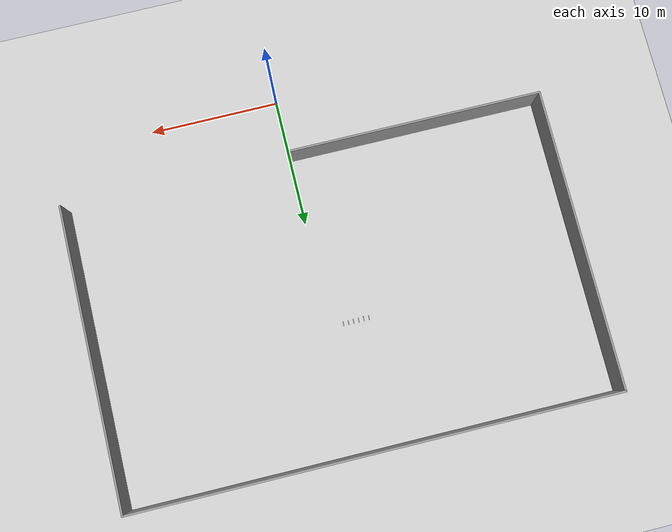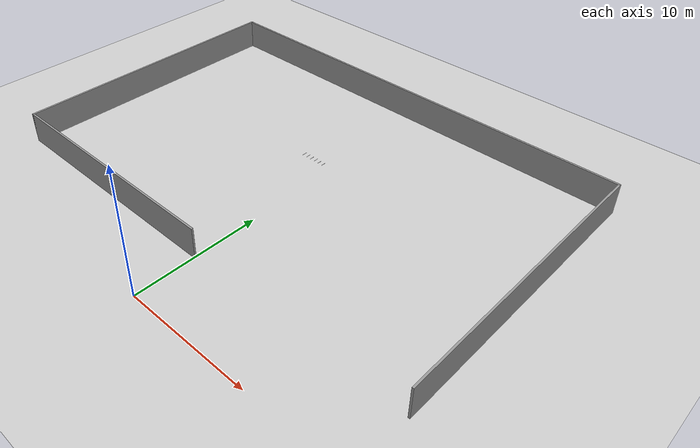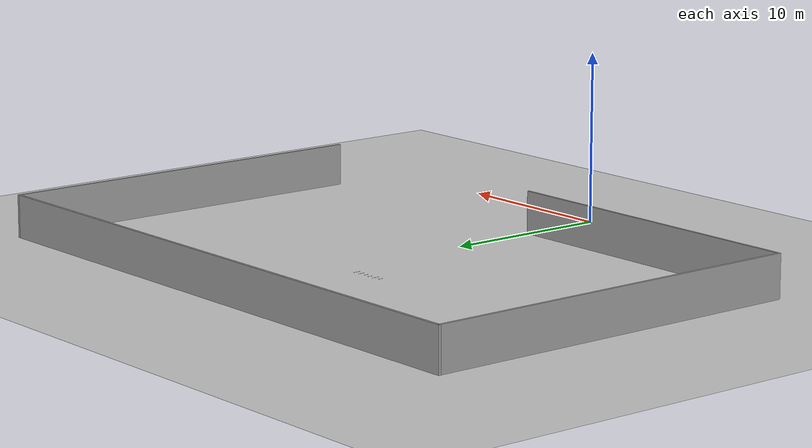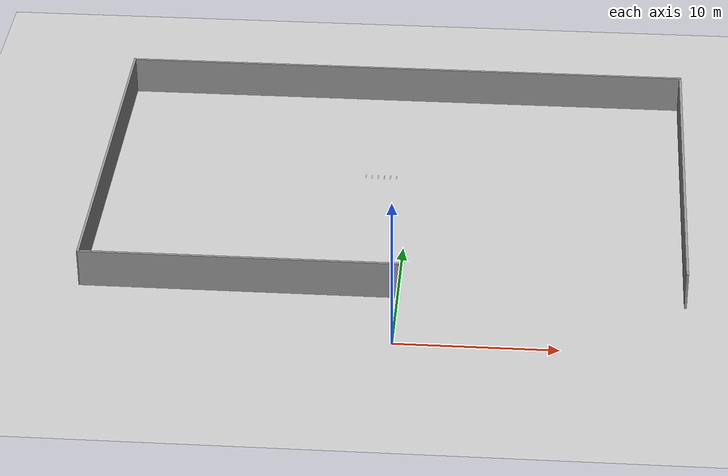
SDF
<sdf version="1.6">
 <world name="default">
  <model name="ground_plane">
   <static>1</static>
   <link name="link">
    <collision name="collision">
     <geometry><plane><normal>0 0 1</normal><size>100 100</size></plane></geometry>
     <surface><friction><ode><mu>100</mu><mu2>50</mu2></ode></friction></surface>
    </collision>
    <visual name="visual">
     <cast_shadows>0</cast_shadows>
     <geometry><plane><normal>0 0 1</normal><size>100 100</size></plane></geometry>
     <material>
      <script><uri>file://media/materials/scripts/gazebo.material</uri><name>Gazebo/Grey</name></script>
     </material>
    </visual>
   </link>
  </model>
  <model name="zebra_crossing_40cmx200cm_4">
   <link name="link_2">
    <inertial>
     <mass>1</mass>
     <inertia>
      <ixx>0.166667</ixx>
      <ixy>0</ixy>
      <ixz>0</ixz>
      <iyy>0.166667</iyy>
      <iyz>0</iyz>
      <izz>0.166667</izz>
     </inertia>
    </inertial>
    <visual name="ModelPreview_5::link_2::visual_1">
     <pose>-0.2 0 0 0 -0 0</pose>
     <geometry><box><size>0.05 0.4 0.001</size></box></geometry>
     <material>
      <lighting>1</lighting>
      <script><uri>file://media/materials/scripts/gazebo.material</uri><name>Gazebo/White</name></script>
     </material>
    </visual>
    <visual name="ModelPreview_5::link_2::visual_3">
     <pose>-0.6 0 0 0 -0 0</pose>
     <geometry><box><size>0.05 0.4 0.001</size></box></geometry>
     <material>
      <lighting>1</lighting>
      <script><uri>file://media/materials/scripts/gazebo.material</uri><name>Gazebo/White</name></script>
     </material>
    </visual>
    <visual name="ModelPreview_5::link_2::visual_4">
     <pose>1 0 0 0 -0 0</pose>
     <geometry><box><size>0.05 0.4 0.001</size></box></geometry>
     <material>
      <lighting>1</lighting>
      <script><uri>file://media/materials/scripts/gazebo.material</uri><name>Gazebo/White</name></script>
     </material>
    </visual>
    <visual name="visual">
     <pose>0.2 0 0 0 -0 0</pose>
     <geometry><box><size>0.05 0.4 0.001</size></box></geometry>
     <material>
      <lighting>1</lighting>
      <script><uri>file://media/materials/scripts/gazebo.material</uri><name>Gazebo/White</name></script>
     </material>
    </visual>
    <visual name="ModelPreview_5::link_2::visual_5">
     <pose>-1 0 0 0 -0 0</pose>
     <geometry><box><size>0.05 0.4 0.001</size></box></geometry>
     <material>
      <lighting>1</lighting>
      <script><uri>file://media/materials/scripts/gazebo.material</uri><name>Gazebo/White</name></script>
     </material>
    </visual>
    <visual name="ModelPreview_5::link_2::visual_2">
     <pose>0.6 0 0 0 -0 0</pose>
     <geometry><box><size>0.05 0.4 0.001</size></box></geometry>
     <material>
      <lighting>1</lighting>
      <script><uri>file://media/materials/scripts/gazebo.material</uri><name>Gazebo/White</name></script>
     </material>
    </visual>
    <collision name="collision_5">
     <pose>-1 0 0 0 -0 0</pose>
     <geometry><box><size>0.05 0.4 1e-05</size></box></geometry>
     <surface>
      <friction>
       <ode><mu>1</mu><mu2>1</mu2><fdir1>0 0 0</fdir1><slip1>0</slip1><slip2>0</slip2></ode>
       <torsional>
        <coefficient>1</coefficient>
        <patch_radius>0</patch_radius>
        <surface_radius>0</surface_radius>
        <use_patch_radius>1</use_patch_radius>
        <ode><slip>0</slip></ode>
       </torsional>
      </friction>
      <bounce><restitution_coefficient>0</restitution_coefficient><threshold>1e+06</threshold></bounce>
      <contact>
       <collide_without_contact>0</collide_without_contact>
       <collide_without_contact_bitmask>1</collide_without_contact_bitmask>
       <collide_bitmask>1</collide_bitmask>
       <ode>
        <soft_cfm>0</soft_cfm>
        <soft_erp>0.2</soft_erp>
        <kp>1e+13</kp>
        <kd>1</kd>
        <max_vel>0.01</max_vel>
        <min_depth>0</min_depth>
       </ode>
       <bullet>
        <split_impulse>1</split_impulse>
        <split_impulse_penetration_threshold>-0.01</split_impulse_penetration_threshold>
        <soft_cfm>0</soft_cfm>
        <soft_erp>0.2</soft_erp>
        <kp>1e+13</kp>
        <kd>1</kd>
       </bullet>
      </contact>
     </surface>
    </collision>
    <collision name="collision">
     <pose>0.2 0 0 0 -0 0</pose>
     <geometry><box><size>0.05 0.4 1e-05</size></box></geometry>
     <surface>
      <friction>
       <ode><mu>1</mu><mu2>1</mu2><fdir1>0 0 0</fdir1><slip1>0</slip1><slip2>0</slip2></ode>
       <torsional>
        <coefficient>1</coefficient>
        <patch_radius>0</patch_radius>
        <surface_radius>0</surface_radius>
        <use_patch_radius>1</use_patch_radius>
        <ode><slip>0</slip></ode>
       </torsional>
      </friction>
      <bounce><restitution_coefficient>0</restitution_coefficient><threshold>1e+06</threshold></bounce>
      <contact>
       <collide_without_contact>0</collide_without_contact>
       <collide_without_contact_bitmask>1</collide_without_contact_bitmask>
       <collide_bitmask>1</collide_bitmask>
       <ode>
        <soft_cfm>0</soft_cfm>
        <soft_erp>0.2</soft_erp>
        <kp>1e+13</kp>
        <kd>1</kd>
        <max_vel>0.01</max_vel>
        <min_depth>0</min_depth>
       </ode>
       <bullet>
        <split_impulse>1</split_impulse>
        <split_impulse_penetration_threshold>-0.01</split_impulse_penetration_threshold>
        <soft_cfm>0</soft_cfm>
        <soft_erp>0.2</soft_erp>
        <kp>1e+13</kp>
        <kd>1</kd>
       </bullet>
      </contact>
     </surface>
    </collision>
    <collision name="collision_3">
     <pose>-0.6 0 0 0 -0 0</pose>
     <geometry><box><size>0.05 0.4 1e-05</size></box></geometry>
     <surface>
      <friction>
       <ode><mu>1</mu><mu2>1</mu2><fdir1>0 0 0</fdir1><slip1>0</slip1><slip2>0</slip2></ode>
       <torsional>
        <coefficient>1</coefficient>
        <patch_radius>0</patch_radius>
        <surface_radius>0</surface_radius>
        <use_patch_radius>1</use_patch_radius>
        <ode><slip>0</slip></ode>
       </torsional>
      </friction>
      <bounce><restitution_coefficient>0</restitution_coefficient><threshold>1e+06</threshold></bounce>
      <contact>
       <collide_without_contact>0</collide_without_contact>
       <collide_without_contact_bitmask>1</collide_without_contact_bitmask>
       <collide_bitmask>1</collide_bitmask>
       <ode>
        <soft_cfm>0</soft_cfm>
        <soft_erp>0.2</soft_erp>
        <kp>1e+13</kp>
        <kd>1</kd>
        <max_vel>0.01</max_vel>
        <min_depth>0</min_depth>
       </ode>
       <bullet>
        <split_impulse>1</split_impulse>
        <split_impulse_penetration_threshold>-0.01</split_impulse_penetration_threshold>
        <soft_cfm>0</soft_cfm>
        <soft_erp>0.2</soft_erp>
        <kp>1e+13</kp>
        <kd>1</kd>
       </bullet>
      </contact>
     </surface>
    </collision>
    <collision name="collision_4">
     <pose>1 0 0 0 -0 0</pose>
     <geometry><box><size>0.05 0.4 1e-05</size></box></geometry>
     <surface>
      <friction>
       <ode><mu>1</mu><mu2>1</mu2><fdir1>0 0 0</fdir1><slip1>0</slip1><slip2>0</slip2></ode>
       <torsional>
        <coefficient>1</coefficient>
        <patch_radius>0</patch_radius>
        <surface_radius>0</surface_radius>
        <use_patch_radius>1</use_patch_radius>
        <ode><slip>0</slip></ode>
       </torsional>
      </friction>
      <bounce><restitution_coefficient>0</restitution_coefficient><threshold>1e+06</threshold></bounce>
      <contact>
       <collide_without_contact>0</collide_without_contact>
       <collide_without_contact_bitmask>1</collide_without_contact_bitmask>
       <collide_bitmask>1</collide_bitmask>
       <ode>
        <soft_cfm>0</soft_cfm>
        <soft_erp>0.2</soft_erp>
        <kp>1e+13</kp>
        <kd>1</kd>
        <max_vel>0.01</max_vel>
        <min_depth>0</min_depth>
       </ode>
       <bullet>
        <split_impulse>1</split_impulse>
        <split_impulse_penetration_threshold>-0.01</split_impulse_penetration_threshold>
        <soft_cfm>0</soft_cfm>
        <soft_erp>0.2</soft_erp>
        <kp>1e+13</kp>
        <kd>1</kd>
       </bullet>
      </contact>
     </surface>
    </collision>
    <collision name="collision_2">
     <pose>0.6 0 0 0 -0 0</pose>
     <geometry><box><size>0.05 0.4 1e-05</size></box></geometry>
     <surface>
      <friction>
       <ode><mu>1</mu><mu2>1</mu2><fdir1>0 0 0</fdir1><slip1>0</slip1><slip2>0</slip2></ode>
       <torsional>
        <coefficient>1</coefficient>
        <patch_radius>0</patch_radius>
        <surface_radius>0</surface_radius>
        <use_patch_radius>1</use_patch_radius>
        <ode><slip>0</slip></ode>
       </torsional>
      </friction>
      <bounce><restitution_coefficient>0</restitution_coefficient><threshold>1e+06</threshold></bounce>
      <contact>
       <collide_without_contact>0</collide_without_contact>
       <collide_without_contact_bitmask>1</collide_without_contact_bitmask>
       <collide_bitmask>1</collide_bitmask>
       <ode>
        <soft_cfm>0</soft_cfm>
        <soft_erp>0.2</soft_erp>
        <kp>1e+13</kp>
        <kd>1</kd>
        <max_vel>0.01</max_vel>
        <min_depth>0</min_depth>
       </ode>
       <bullet>
        <split_impulse>1</split_impulse>
        <split_impulse_penetration_threshold>-0.01</split_impulse_penetration_threshold>
        <soft_cfm>0</soft_cfm>
        <soft_erp>0.2</soft_erp>
        <kp>1e+13</kp>
        <kd>1</kd>
       </bullet>
      </contact>
     </surface>
    </collision>
    <collision name="collision_1">
     <pose>-0.2 0 0 0 -0 0</pose>
     <geometry><box><size>0.05 0.4 1e-05</size></box></geometry>
     <surface>
      <friction>
       <ode><mu>1</mu><mu2>1</mu2><fdir1>0 0 0</fdir1><slip1>0</slip1><slip2>0</slip2></ode>
       <torsional>
        <coefficient>1</coefficient>
        <patch_radius>0</patch_radius>
        <surface_radius>0</surface_radius>
        <use_patch_radius>1</use_patch_radius>
        <ode><slip>0</slip></ode>
       </torsional>
      </friction>
      <bounce><restitution_coefficient>0</restitution_coefficient><threshold>1e+06</threshold></bounce>
      <contact>
       <collide_without_contact>0</collide_without_contact>
       <collide_without_contact_bitmask>1</collide_without_contact_bitmask>
       <collide_bitmask>1</collide_bitmask>
       <ode>
        <soft_cfm>0</soft_cfm>
        <soft_erp>0.2</soft_erp>
        <kp>1e+13</kp>
        <kd>1</kd>
        <max_vel>0.01</max_vel>
        <min_depth>0</min_depth>
       </ode>
       <bullet>
        <split_impulse>1</split_impulse>
        <split_impulse_penetration_threshold>-0.01</split_impulse_penetration_threshold>
        <soft_cfm>0</soft_cfm>
        <soft_erp>0.2</soft_erp>
        <kp>1e+13</kp>
        <kd>1</kd>
       </bullet>
      </contact>
     </surface>
    </collision>
   </link>
   <static>1</static>
   <pose>-2 18.2 0 0 -0 0</pose>
  </model>
  <model name="factoryWall2">
   <pose>-1.04 16.4 0 0 -0 0</pose>
   <link name="Wall_12">
    <collision name="Wall_12_Collision">
     <geometry><box><size>23.25 0.15 2.5</size></box></geometry>
     <pose>0 0 1.25 0 -0 0</pose>
    </collision>
    <visual name="Wall_12_Visual">
     <pose>0 0 1.25 0 -0 0</pose>
     <geometry><box><size>23.25 0.15 2.5</size></box></geometry>
     <material>
      <script><uri>file://media/materials/scripts/gazebo.material</uri><name>Gazebo/Grey</name></script>
      <ambient>1 1 1 1</ambient>
     </material>
     <meta><layer>0</layer></meta>
    </visual>
    <pose>18.56 0.050001 0 0 -0 -1.5708</pose>
   </link>
   <link name="Wall_14">
    <collision name="Wall_14_Collision">
     <geometry><box><size>23.35 0.15 2.5</size></box></geometry>
     <pose>0 0 1.25 0 -0 0</pose>
    </collision>
    <visual name="Wall_14_Visual">
     <pose>0 0 1.25 0 -0 0</pose>
     <geometry><box><size>23.35 0.15 2.5</size></box></geometry>
     <material>
      <script><uri>file://media/materials/scripts/gazebo.material</uri><name>Gazebo/Grey</name></script>
      <ambient>1 1 1 1</ambient>
     </material>
     <meta><layer>0</layer></meta>
    </visual>
    <pose>-18.56 0 0 0 -0 -1.5708</pose>
   </link>
   <link name="Wall_16">
    <collision name="Wall_16_Collision">
     <geometry><box><size>19.75 0.15 2.5</size></box></geometry>
     <pose>0 0 1.25 0 -0 0</pose>
    </collision>
    <visual name="Wall_16_Visual">
     <pose>0 0 1.25 0 -0 0</pose>
     <geometry><box><size>19.75 0.15 2.5</size></box></geometry>
     <material>
      <script><uri>file://media/materials/scripts/gazebo.material</uri><name>Gazebo/Grey</name></script>
      <ambient>1 1 1 1</ambient>
     </material>
     <meta><layer>0</layer></meta>
    </visual>
    <pose>-8.76 -11.6 0 0 -0 0</pose>
   </link>
   <link name="Wall_8">
    <collision name="Wall_8_Collision">
     <geometry><box><size>37.27 0.15 2.5</size></box></geometry>
     <pose>0 0 1.25 0 -0 0</pose>
    </collision>
    <visual name="Wall_8_Visual">
     <pose>0 0 1.25 0 -0 0</pose>
     <geometry><box><size>37.27 0.15 2.5</size></box></geometry>
     <material>
      <script><uri>file://media/materials/scripts/gazebo.material</uri><name>Gazebo/Grey</name></script>
      <ambient>1 1 1 1</ambient>
     </material>
     <meta><layer>0</layer></meta>
    </visual>
    <pose>0 11.6 0 0 -0 3.14159</pose>
   </link>
   <static>1</static>
  </model>
 </world>
</sdf>
